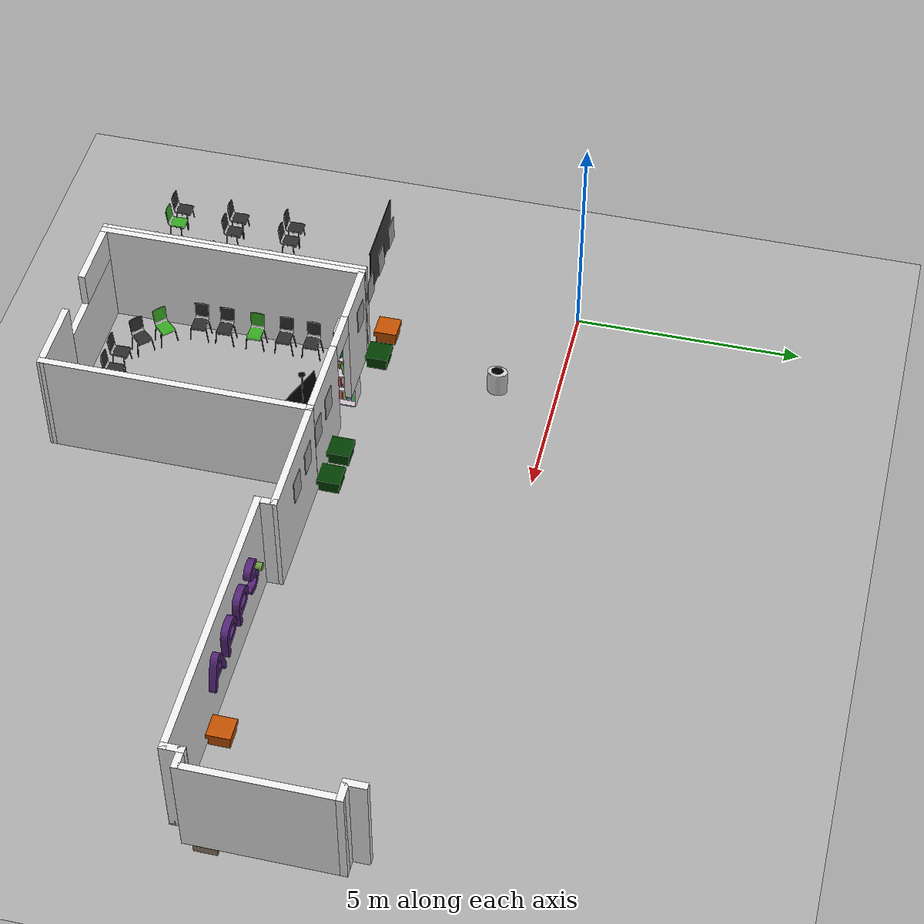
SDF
<sdf version="1.6">
 <world name="default">
  <model name="ground_plane">
   <static>1</static>
   <link name="link">
    <collision name="collision">
     <geometry><plane><normal>0 0 1</normal><size>100 100</size></plane></geometry>
     <surface><friction><ode><mu>100</mu><mu2>50</mu2></ode></friction></surface>
    </collision>
    <visual name="visual">
     <cast_shadows>0</cast_shadows>
     <geometry><plane><normal>0 0 1</normal><size>100 100</size></plane></geometry>
     <material>
      <script><uri>file://media/materials/scripts/gazebo.material</uri><name>Gazebo/Grey</name></script>
     </material>
    </visual>
   </link>
  </model>
  <model name="ucu_basic_frame.world">
   <link name="Wall_171">
    <pose>5.44548 -11.0107 0 0 -0 1.5685</pose>
    <visual name="Wall_171_Visual">
     <pose>0 0 1.25 0 -0 0</pose>
     <geometry><box><size>5.97284 0.15 2.5</size></box></geometry>
     <material>
      <script><uri>file://media/materials/scripts/gazebo.material</uri><name>Gazebo/White</name></script>
      <ambient>1 1 1 1</ambient>
      <diffuse>1 1 1 1</diffuse>
      <specular>0 0 0 1</specular>
      <emissive>0 0 0 1</emissive>
     </material>
     <meta><layer>0</layer></meta>
    </visual>
    <collision name="Wall_171_Collision">
     <pose>0 0 1.25 0 -0 0</pose>
     <geometry><box><size>5.97284 0.15 2.5</size></box></geometry>
     <surface>
      <friction>
       <ode><mu>1</mu><mu2>1</mu2><fdir1>0 0 0</fdir1><slip1>0</slip1><slip2>0</slip2></ode>
       <torsional>
        <coefficient>1</coefficient>
        <patch_radius>0</patch_radius>
        <surface_radius>0</surface_radius>
        <use_patch_radius>1</use_patch_radius>
        <ode><slip>0</slip></ode>
       </torsional>
      </friction>
      <bounce><restitution_coefficient>0</restitution_coefficient><threshold>1e+06</threshold></bounce>
      <contact>
       <collide_without_contact>0</collide_without_contact>
       <collide_without_contact_bitmask>1</collide_without_contact_bitmask>
       <collide_bitmask>1</collide_bitmask>
       <ode>
        <soft_cfm>0</soft_cfm>
        <soft_erp>0.2</soft_erp>
        <kp>1e+13</kp>
        <kd>1</kd>
        <max_vel>0.01</max_vel>
        <min_depth>0</min_depth>
       </ode>
       <bullet>
        <split_impulse>1</split_impulse>
        <split_impulse_penetration_threshold>-0.01</split_impulse_penetration_threshold>
        <soft_cfm>0</soft_cfm>
        <soft_erp>0.2</soft_erp>
        <kp>1e+13</kp>
        <kd>1</kd>
       </bullet>
      </contact>
     </surface>
    </collision>
   </link>
   <link name="Wall_172">
    <pose>6.76546 -8.09988 0 0 0 -0.000444</pose>
    <visual name="Wall_172_Visual">
     <pose>0 0 1.25 0 -0 0</pose>
     <geometry><box><size>2.77695 0.15 2.5</size></box></geometry>
     <material>
      <script><uri>file://media/materials/scripts/gazebo.material</uri><name>Gazebo/White</name></script>
      <ambient>1 1 1 1</ambient>
      <diffuse>1 1 1 1</diffuse>
      <specular>0 0 0 1</specular>
      <emissive>0 0 0 1</emissive>
     </material>
     <meta><layer>0</layer></meta>
    </visual>
    <collision name="Wall_172_Collision">
     <pose>0 0 1.25 0 -0 0</pose>
     <geometry><box><size>2.77695 0.15 2.5</size></box></geometry>
     <surface>
      <friction>
       <ode><mu>1</mu><mu2>1</mu2><fdir1>0 0 0</fdir1><slip1>0</slip1><slip2>0</slip2></ode>
       <torsional>
        <coefficient>1</coefficient>
        <patch_radius>0</patch_radius>
        <surface_radius>0</surface_radius>
        <use_patch_radius>1</use_patch_radius>
        <ode><slip>0</slip></ode>
       </torsional>
      </friction>
      <bounce><restitution_coefficient>0</restitution_coefficient><threshold>1e+06</threshold></bounce>
      <contact>
       <collide_without_contact>0</collide_without_contact>
       <collide_without_contact_bitmask>1</collide_without_contact_bitmask>
       <collide_bitmask>1</collide_bitmask>
       <ode>
        <soft_cfm>0</soft_cfm>
        <soft_erp>0.2</soft_erp>
        <kp>1e+13</kp>
        <kd>1</kd>
        <max_vel>0.01</max_vel>
        <min_depth>0</min_depth>
       </ode>
       <bullet>
        <split_impulse>1</split_impulse>
        <split_impulse_penetration_threshold>-0.01</split_impulse_penetration_threshold>
        <soft_cfm>0</soft_cfm>
        <soft_erp>0.2</soft_erp>
        <kp>1e+13</kp>
        <kd>1</kd>
       </bullet>
      </contact>
     </surface>
    </collision>
   </link>
   <link name="Wall_175">
    <pose>8.08184 -8.28385 0 0 0 -1.55318</pose>
    <visual name="Wall_175_Visual">
     <pose>0 0 1.25 0 -0 0</pose>
     <geometry><box><size>0.5 0.15 2.5</size></box></geometry>
     <material>
      <script><uri>file://media/materials/scripts/gazebo.material</uri><name>Gazebo/White</name></script>
      <ambient>1 1 1 1</ambient>
      <diffuse>1 1 1 1</diffuse>
      <specular>0 0 0 1</specular>
      <emissive>0 0 0 1</emissive>
     </material>
     <meta><layer>0</layer></meta>
    </visual>
    <collision name="Wall_175_Collision">
     <pose>0 0 1.25 0 -0 0</pose>
     <geometry><box><size>0.5 0.15 2.5</size></box></geometry>
     <surface>
      <friction>
       <ode><mu>1</mu><mu2>1</mu2><fdir1>0 0 0</fdir1><slip1>0</slip1><slip2>0</slip2></ode>
       <torsional>
        <coefficient>1</coefficient>
        <patch_radius>0</patch_radius>
        <surface_radius>0</surface_radius>
        <use_patch_radius>1</use_patch_radius>
        <ode><slip>0</slip></ode>
       </torsional>
      </friction>
      <bounce><restitution_coefficient>0</restitution_coefficient><threshold>1e+06</threshold></bounce>
      <contact>
       <collide_without_contact>0</collide_without_contact>
       <collide_without_contact_bitmask>1</collide_without_contact_bitmask>
       <collide_bitmask>1</collide_bitmask>
       <ode>
        <soft_cfm>0</soft_cfm>
        <soft_erp>0.2</soft_erp>
        <kp>1e+13</kp>
        <kd>1</kd>
        <max_vel>0.01</max_vel>
        <min_depth>0</min_depth>
       </ode>
       <bullet>
        <split_impulse>1</split_impulse>
        <split_impulse_penetration_threshold>-0.01</split_impulse_penetration_threshold>
        <soft_cfm>0</soft_cfm>
        <soft_erp>0.2</soft_erp>
        <kp>1e+13</kp>
        <kd>1</kd>
       </bullet>
      </contact>
     </surface>
    </collision>
   </link>
   <link name="Wall_181">
    <pose>3.39042 -8.08948 0 0 -0 3.13683</pose>
    <visual name="Wall_181_Visual_0">
     <pose>-1.19379 0 1.25 0 -0 0</pose>
     <geometry><box><size>1.8861 0.15 2.5</size></box></geometry>
     <material>
      <script><uri>file://media/materials/scripts/gazebo.material</uri><name>Gazebo/White</name></script>
      <ambient>1 1 1 1</ambient>
      <diffuse>1 1 1 1</diffuse>
      <specular>0 0 0 1</specular>
      <emissive>0 0 0 1</emissive>
     </material>
     <meta><layer>0</layer></meta>
    </visual>
    <visual name="Wall_181_Visual_1">
     <pose>1.39305 0 1.25 0 -0 0</pose>
     <geometry><box><size>1.48758 0.15 2.5</size></box></geometry>
     <material>
      <script><uri>file://media/materials/scripts/gazebo.material</uri><name>Gazebo/White</name></script>
      <ambient>1 1 1 1</ambient>
      <diffuse>1 1 1 1</diffuse>
      <specular>0 0 0 1</specular>
      <emissive>0 0 0 1</emissive>
     </material>
     <meta><layer>0</layer></meta>
    </visual>
    <visual name="Wall_181_Visual_2">
     <pose>0.19926 0 2.25 0 -0 0</pose>
     <geometry><box><size>0.9 0.15 0.5</size></box></geometry>
     <material>
      <script><uri>file://media/materials/scripts/gazebo.material</uri><name>Gazebo/White</name></script>
      <ambient>1 1 1 1</ambient>
      <diffuse>1 1 1 1</diffuse>
      <specular>0 0 0 1</specular>
      <emissive>0 0 0 1</emissive>
     </material>
     <meta><layer>0</layer></meta>
    </visual>
    <collision name="Wall_181_Collision_0">
     <pose>-1.19379 0 1.25 0 -0 0</pose>
     <geometry><box><size>1.8861 0.15 2.5</size></box></geometry>
     <surface>
      <friction>
       <ode><mu>1</mu><mu2>1</mu2><fdir1>0 0 0</fdir1><slip1>0</slip1><slip2>0</slip2></ode>
       <torsional>
        <coefficient>1</coefficient>
        <patch_radius>0</patch_radius>
        <surface_radius>0</surface_radius>
        <use_patch_radius>1</use_patch_radius>
        <ode><slip>0</slip></ode>
       </torsional>
      </friction>
      <bounce><restitution_coefficient>0</restitution_coefficient><threshold>1e+06</threshold></bounce>
      <contact>
       <collide_without_contact>0</collide_without_contact>
       <collide_without_contact_bitmask>1</collide_without_contact_bitmask>
       <collide_bitmask>1</collide_bitmask>
       <ode>
        <soft_cfm>0</soft_cfm>
        <soft_erp>0.2</soft_erp>
        <kp>1e+13</kp>
        <kd>1</kd>
        <max_vel>0.01</max_vel>
        <min_depth>0</min_depth>
       </ode>
       <bullet>
        <split_impulse>1</split_impulse>
        <split_impulse_penetration_threshold>-0.01</split_impulse_penetration_threshold>
        <soft_cfm>0</soft_cfm>
        <soft_erp>0.2</soft_erp>
        <kp>1e+13</kp>
        <kd>1</kd>
       </bullet>
      </contact>
     </surface>
    </collision>
    <collision name="Wall_181_Collision_1">
     <pose>1.39305 0 1.25 0 -0 0</pose>
     <geometry><box><size>1.48758 0.15 2.5</size></box></geometry>
     <surface>
      <friction>
       <ode><mu>1</mu><mu2>1</mu2><fdir1>0 0 0</fdir1><slip1>0</slip1><slip2>0</slip2></ode>
       <torsional>
        <coefficient>1</coefficient>
        <patch_radius>0</patch_radius>
        <surface_radius>0</surface_radius>
        <use_patch_radius>1</use_patch_radius>
        <ode><slip>0</slip></ode>
       </torsional>
      </friction>
      <bounce><restitution_coefficient>0</restitution_coefficient><threshold>1e+06</threshold></bounce>
      <contact>
       <collide_without_contact>0</collide_without_contact>
       <collide_without_contact_bitmask>1</collide_without_contact_bitmask>
       <collide_bitmask>1</collide_bitmask>
       <ode>
        <soft_cfm>0</soft_cfm>
        <soft_erp>0.2</soft_erp>
        <kp>1e+13</kp>
        <kd>1</kd>
        <max_vel>0.01</max_vel>
        <min_depth>0</min_depth>
       </ode>
       <bullet>
        <split_impulse>1</split_impulse>
        <split_impulse_penetration_threshold>-0.01</split_impulse_penetration_threshold>
        <soft_cfm>0</soft_cfm>
        <soft_erp>0.2</soft_erp>
        <kp>1e+13</kp>
        <kd>1</kd>
       </bullet>
      </contact>
     </surface>
    </collision>
    <collision name="Wall_181_Collision_2">
     <pose>0.19926 0 2.25 0 -0 0</pose>
     <geometry><box><size>0.9 0.15 0.5</size></box></geometry>
     <surface>
      <friction>
       <ode><mu>1</mu><mu2>1</mu2><fdir1>0 0 0</fdir1><slip1>0</slip1><slip2>0</slip2></ode>
       <torsional>
        <coefficient>1</coefficient>
        <patch_radius>0</patch_radius>
        <surface_radius>0</surface_radius>
        <use_patch_radius>1</use_patch_radius>
        <ode><slip>0</slip></ode>
       </torsional>
      </friction>
      <bounce><restitution_coefficient>0</restitution_coefficient><threshold>1e+06</threshold></bounce>
      <contact>
       <collide_without_contact>0</collide_without_contact>
       <collide_without_contact_bitmask>1</collide_without_contact_bitmask>
       <collide_bitmask>1</collide_bitmask>
       <ode>
        <soft_cfm>0</soft_cfm>
        <soft_erp>0.2</soft_erp>
        <kp>1e+13</kp>
        <kd>1</kd>
        <max_vel>0.01</max_vel>
        <min_depth>0</min_depth>
       </ode>
       <bullet>
        <split_impulse>1</split_impulse>
        <split_impulse_penetration_threshold>-0.01</split_impulse_penetration_threshold>
        <soft_cfm>0</soft_cfm>
        <soft_erp>0.2</soft_erp>
        <kp>1e+13</kp>
        <kd>1</kd>
       </bullet>
      </contact>
     </surface>
    </collision>
   </link>
   <link name="Wall_184">
    <pose>1.33252 -10.9956 0 0 0 -1.56948</pose>
    <visual name="Wall_184_Visual">
     <pose>0 0 1.25 0 -0 0</pose>
     <geometry><box><size>5.98199 0.15 2.5</size></box></geometry>
     <material>
      <script><uri>file://media/materials/scripts/gazebo.material</uri><name>Gazebo/White</name></script>
      <ambient>1 1 1 1</ambient>
      <diffuse>1 1 1 1</diffuse>
      <specular>0 0 0 1</specular>
      <emissive>0 0 0 1</emissive>
     </material>
     <meta><layer>0</layer></meta>
    </visual>
    <collision name="Wall_184_Collision">
     <pose>0 0 1.25 0 -0 0</pose>
     <geometry><box><size>5.98199 0.15 2.5</size></box></geometry>
     <surface>
      <friction>
       <ode><mu>1</mu><mu2>1</mu2><fdir1>0 0 0</fdir1><slip1>0</slip1><slip2>0</slip2></ode>
       <torsional>
        <coefficient>1</coefficient>
        <patch_radius>0</patch_radius>
        <surface_radius>0</surface_radius>
        <use_patch_radius>1</use_patch_radius>
        <ode><slip>0</slip></ode>
       </torsional>
      </friction>
      <bounce><restitution_coefficient>0</restitution_coefficient><threshold>1e+06</threshold></bounce>
      <contact>
       <collide_without_contact>0</collide_without_contact>
       <collide_without_contact_bitmask>1</collide_without_contact_bitmask>
       <collide_bitmask>1</collide_bitmask>
       <ode>
        <soft_cfm>0</soft_cfm>
        <soft_erp>0.2</soft_erp>
        <kp>1e+13</kp>
        <kd>1</kd>
        <max_vel>0.01</max_vel>
        <min_depth>0</min_depth>
       </ode>
       <bullet>
        <split_impulse>1</split_impulse>
        <split_impulse_penetration_threshold>-0.01</split_impulse_penetration_threshold>
        <soft_cfm>0</soft_cfm>
        <soft_erp>0.2</soft_erp>
        <kp>1e+13</kp>
        <kd>1</kd>
       </bullet>
      </contact>
     </surface>
    </collision>
   </link>
   <link name="Wall_185">
    <pose>1.28661 -13.9114 0 0 -0 3.13667</pose>
    <visual name="Wall_185_Visual">
     <pose>0 0 1.25 0 -0 0</pose>
     <geometry><box><size>0.249504 0.15 2.5</size></box></geometry>
     <material>
      <script><uri>file://media/materials/scripts/gazebo.material</uri><name>Gazebo/White</name></script>
      <ambient>1 1 1 1</ambient>
      <diffuse>1 1 1 1</diffuse>
      <specular>0 0 0 1</specular>
      <emissive>0 0 0 1</emissive>
     </material>
     <meta><layer>0</layer></meta>
    </visual>
    <collision name="Wall_185_Collision">
     <pose>0 0 1.25 0 -0 0</pose>
     <geometry><box><size>0.249504 0.15 2.5</size></box></geometry>
     <surface>
      <friction>
       <ode><mu>1</mu><mu2>1</mu2><fdir1>0 0 0</fdir1><slip1>0</slip1><slip2>0</slip2></ode>
       <torsional>
        <coefficient>1</coefficient>
        <patch_radius>0</patch_radius>
        <surface_radius>0</surface_radius>
        <use_patch_radius>1</use_patch_radius>
        <ode><slip>0</slip></ode>
       </torsional>
      </friction>
      <bounce><restitution_coefficient>0</restitution_coefficient><threshold>1e+06</threshold></bounce>
      <contact>
       <collide_without_contact>0</collide_without_contact>
       <collide_without_contact_bitmask>1</collide_without_contact_bitmask>
       <collide_bitmask>1</collide_bitmask>
       <ode>
        <soft_cfm>0</soft_cfm>
        <soft_erp>0.2</soft_erp>
        <kp>1e+13</kp>
        <kd>1</kd>
        <max_vel>0.01</max_vel>
        <min_depth>0</min_depth>
       </ode>
       <bullet>
        <split_impulse>1</split_impulse>
        <split_impulse_penetration_threshold>-0.01</split_impulse_penetration_threshold>
        <soft_cfm>0</soft_cfm>
        <soft_erp>0.2</soft_erp>
        <kp>1e+13</kp>
        <kd>1</kd>
       </bullet>
      </contact>
     </surface>
    </collision>
   </link>
   <link name="Wall_186">
    <pose>1.23028 -10.9951 0 0 -0 1.57305</pose>
    <visual name="Wall_186_Visual">
     <pose>0 0 1.25 0 -0 0</pose>
     <geometry><box><size>5.98236 0.15 2.5</size></box></geometry>
     <material>
      <script><uri>file://media/materials/scripts/gazebo.material</uri><name>Gazebo/White</name></script>
      <ambient>0 1 0 1</ambient>
      <diffuse>1 1 1 1</diffuse>
      <specular>0 0 0 1</specular>
      <emissive>0 0 0 1</emissive>
     </material>
     <meta><layer>0</layer></meta>
    </visual>
    <collision name="Wall_186_Collision">
     <pose>0 0 1.25 0 -0 0</pose>
     <geometry><box><size>5.98236 0.15 2.5</size></box></geometry>
     <surface>
      <friction>
       <ode><mu>1</mu><mu2>1</mu2><fdir1>0 0 0</fdir1><slip1>0</slip1><slip2>0</slip2></ode>
       <torsional>
        <coefficient>1</coefficient>
        <patch_radius>0</patch_radius>
        <surface_radius>0</surface_radius>
        <use_patch_radius>1</use_patch_radius>
        <ode><slip>0</slip></ode>
       </torsional>
      </friction>
      <bounce><restitution_coefficient>0</restitution_coefficient><threshold>1e+06</threshold></bounce>
      <contact>
       <collide_without_contact>0</collide_without_contact>
       <collide_without_contact_bitmask>1</collide_without_contact_bitmask>
       <collide_bitmask>1</collide_bitmask>
       <ode>
        <soft_cfm>0</soft_cfm>
        <soft_erp>0.2</soft_erp>
        <kp>1e+13</kp>
        <kd>1</kd>
        <max_vel>0.01</max_vel>
        <min_depth>0</min_depth>
       </ode>
       <bullet>
        <split_impulse>1</split_impulse>
        <split_impulse_penetration_threshold>-0.01</split_impulse_penetration_threshold>
        <soft_cfm>0</soft_cfm>
        <soft_erp>0.2</soft_erp>
        <kp>1e+13</kp>
        <kd>1</kd>
       </bullet>
      </contact>
     </surface>
    </collision>
   </link>
   <link name="Wall_191">
    <pose>3.38758 -13.9169 0 0 -0 3.13903</pose>
    <visual name="Wall_191_Visual_0">
     <pose>-1.31182 0 1.25 0 -0 0</pose>
     <geometry><box><size>1.62881 0.15 2.5</size></box></geometry>
     <material>
      <script><uri>file://media/materials/scripts/gazebo.material</uri><name>Gazebo/White</name></script>
      <ambient>1 1 1 1</ambient>
      <diffuse>1 1 1 1</diffuse>
      <specular>0 0 0 1</specular>
      <emissive>0 0 0 1</emissive>
     </material>
     <meta><layer>0</layer></meta>
    </visual>
    <visual name="Wall_191_Visual_1">
     <pose>0.814404 0 0.85 0 -0 0</pose>
     <geometry><box><size>2.62364 0.15 1.7</size></box></geometry>
     <material>
      <script><uri>file://media/materials/scripts/gazebo.material</uri><name>Gazebo/White</name></script>
      <ambient>1 1 1 1</ambient>
      <diffuse>1 1 1 1</diffuse>
      <specular>0 0 0 1</specular>
      <emissive>0 0 0 1</emissive>
     </material>
     <meta><layer>0</layer></meta>
    </visual>
    <visual name="Wall_191_Visual_2">
     <pose>1.3144 0 2.1 0 -0 0</pose>
     <geometry><box><size>1.62365 0.15 0.8</size></box></geometry>
     <material>
      <script><uri>file://media/materials/scripts/gazebo.material</uri><name>Gazebo/White</name></script>
      <ambient>1 1 1 1</ambient>
      <diffuse>1 1 1 1</diffuse>
      <specular>0 0 0 1</specular>
      <emissive>0 0 0 1</emissive>
     </material>
     <meta><layer>0</layer></meta>
    </visual>
    <collision name="Wall_191_Collision_1">
     <pose>0.814404 0 0.85 0 -0 0</pose>
     <geometry><box><size>2.62364 0.15 1.7</size></box></geometry>
     <surface>
      <friction>
       <ode><mu>1</mu><mu2>1</mu2><fdir1>0 0 0</fdir1><slip1>0</slip1><slip2>0</slip2></ode>
       <torsional>
        <coefficient>1</coefficient>
        <patch_radius>0</patch_radius>
        <surface_radius>0</surface_radius>
        <use_patch_radius>1</use_patch_radius>
        <ode><slip>0</slip></ode>
       </torsional>
      </friction>
      <bounce><restitution_coefficient>0</restitution_coefficient><threshold>1e+06</threshold></bounce>
      <contact>
       <collide_without_contact>0</collide_without_contact>
       <collide_without_contact_bitmask>1</collide_without_contact_bitmask>
       <collide_bitmask>1</collide_bitmask>
       <ode>
        <soft_cfm>0</soft_cfm>
        <soft_erp>0.2</soft_erp>
        <kp>1e+13</kp>
        <kd>1</kd>
        <max_vel>0.01</max_vel>
        <min_depth>0</min_depth>
       </ode>
       <bullet>
        <split_impulse>1</split_impulse>
        <split_impulse_penetration_threshold>-0.01</split_impulse_penetration_threshold>
        <soft_cfm>0</soft_cfm>
        <soft_erp>0.2</soft_erp>
        <kp>1e+13</kp>
        <kd>1</kd>
       </bullet>
      </contact>
     </surface>
    </collision>
    <collision name="Wall_191_Collision_0">
     <pose>-1.31182 0 1.25 0 -0 0</pose>
     <geometry><box><size>1.62881 0.15 2.5</size></box></geometry>
     <surface>
      <friction>
       <ode><mu>1</mu><mu2>1</mu2><fdir1>0 0 0</fdir1><slip1>0</slip1><slip2>0</slip2></ode>
       <torsional>
        <coefficient>1</coefficient>
        <patch_radius>0</patch_radius>
        <surface_radius>0</surface_radius>
        <use_patch_radius>1</use_patch_radius>
        <ode><slip>0</slip></ode>
       </torsional>
      </friction>
      <bounce><restitution_coefficient>0</restitution_coefficient><threshold>1e+06</threshold></bounce>
      <contact>
       <collide_without_contact>0</collide_without_contact>
       <collide_without_contact_bitmask>1</collide_without_contact_bitmask>
       <collide_bitmask>1</collide_bitmask>
       <ode>
        <soft_cfm>0</soft_cfm>
        <soft_erp>0.2</soft_erp>
        <kp>1e+13</kp>
        <kd>1</kd>
        <max_vel>0.01</max_vel>
        <min_depth>0</min_depth>
       </ode>
       <bullet>
        <split_impulse>1</split_impulse>
        <split_impulse_penetration_threshold>-0.01</split_impulse_penetration_threshold>
        <soft_cfm>0</soft_cfm>
        <soft_erp>0.2</soft_erp>
        <kp>1e+13</kp>
        <kd>1</kd>
       </bullet>
      </contact>
     </surface>
    </collision>
    <collision name="Wall_191_Collision_2">
     <pose>1.3144 0 2.1 0 -0 0</pose>
     <geometry><box><size>1.62365 0.15 0.8</size></box></geometry>
     <surface>
      <friction>
       <ode><mu>1</mu><mu2>1</mu2><fdir1>0 0 0</fdir1><slip1>0</slip1><slip2>0</slip2></ode>
       <torsional>
        <coefficient>1</coefficient>
        <patch_radius>0</patch_radius>
        <surface_radius>0</surface_radius>
        <use_patch_radius>1</use_patch_radius>
        <ode><slip>0</slip></ode>
       </torsional>
      </friction>
      <bounce><restitution_coefficient>0</restitution_coefficient><threshold>1e+06</threshold></bounce>
      <contact>
       <collide_without_contact>0</collide_without_contact>
       <collide_without_contact_bitmask>1</collide_without_contact_bitmask>
       <collide_bitmask>1</collide_bitmask>
       <ode>
        <soft_cfm>0</soft_cfm>
        <soft_erp>0.2</soft_erp>
        <kp>1e+13</kp>
        <kd>1</kd>
        <max_vel>0.01</max_vel>
        <min_depth>0</min_depth>
       </ode>
       <bullet>
        <split_impulse>1</split_impulse>
        <split_impulse_penetration_threshold>-0.01</split_impulse_penetration_threshold>
        <soft_cfm>0</soft_cfm>
        <soft_erp>0.2</soft_erp>
        <kp>1e+13</kp>
        <kd>1</kd>
       </bullet>
      </contact>
     </surface>
    </collision>
   </link>
   <link name="Wall_276">
    <pose>11.1349 -8.45041 0 0 -0 0</pose>
    <visual name="Wall_276_Visual">
     <pose>0 0 1.25 0 -0 0</pose>
     <geometry><box><size>6.25 0.15 2.5</size></box></geometry>
     <material>
      <script><uri>file://media/materials/scripts/gazebo.material</uri><name>Gazebo/White</name></script>
      <ambient>1 1 1 1</ambient>
      <diffuse>1 1 1 1</diffuse>
      <specular>0 0 0 1</specular>
      <emissive>0 0 0 1</emissive>
     </material>
     <meta><layer>0</layer></meta>
    </visual>
    <collision name="Wall_276_Collision">
     <pose>0 0 1.25 0 -0 0</pose>
     <geometry><box><size>6.25 0.15 2.5</size></box></geometry>
     <surface>
      <friction>
       <ode><mu>1</mu><mu2>1</mu2><fdir1>0 0 0</fdir1><slip1>0</slip1><slip2>0</slip2></ode>
       <torsional>
        <coefficient>1</coefficient>
        <patch_radius>0</patch_radius>
        <surface_radius>0</surface_radius>
        <use_patch_radius>1</use_patch_radius>
        <ode><slip>0</slip></ode>
       </torsional>
      </friction>
      <bounce><restitution_coefficient>0</restitution_coefficient><threshold>1e+06</threshold></bounce>
      <contact>
       <collide_without_contact>0</collide_without_contact>
       <collide_without_contact_bitmask>1</collide_without_contact_bitmask>
       <collide_bitmask>1</collide_bitmask>
       <ode>
        <soft_cfm>0</soft_cfm>
        <soft_erp>0.2</soft_erp>
        <kp>1e+13</kp>
        <kd>1</kd>
        <max_vel>0.01</max_vel>
        <min_depth>0</min_depth>
       </ode>
       <bullet>
        <split_impulse>1</split_impulse>
        <split_impulse_penetration_threshold>-0.01</split_impulse_penetration_threshold>
        <soft_cfm>0</soft_cfm>
        <soft_erp>0.2</soft_erp>
        <kp>1e+13</kp>
        <kd>1</kd>
       </bullet>
      </contact>
     </surface>
    </collision>
   </link>
   <link name="Wall_293">
    <pose>14.1849 -8.27541 0 0 -0 1.5708</pose>
    <visual name="Wall_293_Visual">
     <pose>0 0 1.25 0 -0 0</pose>
     <geometry><box><size>0.5 0.15 2.5</size></box></geometry>
     <material>
      <script><uri>file://media/materials/scripts/gazebo.material</uri><name>Gazebo/White</name></script>
      <ambient>1 1 1 1</ambient>
      <diffuse>1 1 1 1</diffuse>
      <specular>0 0 0 1</specular>
      <emissive>0 0 0 1</emissive>
     </material>
     <meta><layer>0</layer></meta>
    </visual>
    <collision name="Wall_293_Collision">
     <pose>0 0 1.25 0 -0 0</pose>
     <geometry><box><size>0.5 0.15 2.5</size></box></geometry>
     <surface>
      <friction>
       <ode><mu>1</mu><mu2>1</mu2><fdir1>0 0 0</fdir1><slip1>0</slip1><slip2>0</slip2></ode>
       <torsional>
        <coefficient>1</coefficient>
        <patch_radius>0</patch_radius>
        <surface_radius>0</surface_radius>
        <use_patch_radius>1</use_patch_radius>
        <ode><slip>0</slip></ode>
       </torsional>
      </friction>
      <bounce><restitution_coefficient>0</restitution_coefficient><threshold>1e+06</threshold></bounce>
      <contact>
       <collide_without_contact>0</collide_without_contact>
       <collide_without_contact_bitmask>1</collide_without_contact_bitmask>
       <collide_bitmask>1</collide_bitmask>
       <ode>
        <soft_cfm>0</soft_cfm>
        <soft_erp>0.2</soft_erp>
        <kp>1e+13</kp>
        <kd>1</kd>
        <max_vel>0.01</max_vel>
        <min_depth>0</min_depth>
       </ode>
       <bullet>
        <split_impulse>1</split_impulse>
        <split_impulse_penetration_threshold>-0.01</split_impulse_penetration_threshold>
        <soft_cfm>0</soft_cfm>
        <soft_erp>0.2</soft_erp>
        <kp>1e+13</kp>
        <kd>1</kd>
       </bullet>
      </contact>
     </surface>
    </collision>
   </link>
   <link name="Wall_294">
    <pose>14.3599 -8.10041 0 0 -0 0</pose>
    <visual name="Wall_294_Visual">
     <pose>0 0 1.25 0 -0 0</pose>
     <geometry><box><size>0.5 0.15 2.5</size></box></geometry>
     <material>
      <script><uri>file://media/materials/scripts/gazebo.material</uri><name>Gazebo/White</name></script>
      <ambient>1 1 1 1</ambient>
      <diffuse>1 1 1 1</diffuse>
      <specular>0 0 0 1</specular>
      <emissive>0 0 0 1</emissive>
     </material>
     <meta><layer>0</layer></meta>
    </visual>
    <collision name="Wall_294_Collision">
     <pose>0 0 1.25 0 -0 0</pose>
     <geometry><box><size>0.5 0.15 2.5</size></box></geometry>
     <surface>
      <friction>
       <ode><mu>1</mu><mu2>1</mu2><fdir1>0 0 0</fdir1><slip1>0</slip1><slip2>0</slip2></ode>
       <torsional>
        <coefficient>1</coefficient>
        <patch_radius>0</patch_radius>
        <surface_radius>0</surface_radius>
        <use_patch_radius>1</use_patch_radius>
        <ode><slip>0</slip></ode>
       </torsional>
      </friction>
      <bounce><restitution_coefficient>0</restitution_coefficient><threshold>1e+06</threshold></bounce>
      <contact>
       <collide_without_contact>0</collide_without_contact>
       <collide_without_contact_bitmask>1</collide_without_contact_bitmask>
       <collide_bitmask>1</collide_bitmask>
       <ode>
        <soft_cfm>0</soft_cfm>
        <soft_erp>0.2</soft_erp>
        <kp>1e+13</kp>
        <kd>1</kd>
        <max_vel>0.01</max_vel>
        <min_depth>0</min_depth>
       </ode>
       <bullet>
        <split_impulse>1</split_impulse>
        <split_impulse_penetration_threshold>-0.01</split_impulse_penetration_threshold>
        <soft_cfm>0</soft_cfm>
        <soft_erp>0.2</soft_erp>
        <kp>1e+13</kp>
        <kd>1</kd>
       </bullet>
      </contact>
     </surface>
    </collision>
   </link>
   <link name="Wall_296">
    <pose>14.5349 -6.55041 0 0 -0 1.5708</pose>
    <visual name="Wall_296_Visual">
     <pose>0 0 1.25 0 -0 0</pose>
     <geometry><box><size>3.25 0.15 2.5</size></box></geometry>
     <material>
      <script><uri>file://media/materials/scripts/gazebo.material</uri><name>Gazebo/White</name></script>
      <ambient>1 1 1 1</ambient>
      <diffuse>1 1 1 1</diffuse>
      <specular>0 0 0 1</specular>
      <emissive>0 0 0 1</emissive>
     </material>
     <meta><layer>0</layer></meta>
    </visual>
    <collision name="Wall_296_Collision">
     <pose>0 0 1.25 0 -0 0</pose>
     <geometry><box><size>3.25 0.15 2.5</size></box></geometry>
     <surface>
      <friction>
       <ode><mu>1</mu><mu2>1</mu2><fdir1>0 0 0</fdir1><slip1>0</slip1><slip2>0</slip2></ode>
       <torsional>
        <coefficient>1</coefficient>
        <patch_radius>0</patch_radius>
        <surface_radius>0</surface_radius>
        <use_patch_radius>1</use_patch_radius>
        <ode><slip>0</slip></ode>
       </torsional>
      </friction>
      <bounce><restitution_coefficient>0</restitution_coefficient><threshold>1e+06</threshold></bounce>
      <contact>
       <collide_without_contact>0</collide_without_contact>
       <collide_without_contact_bitmask>1</collide_without_contact_bitmask>
       <collide_bitmask>1</collide_bitmask>
       <ode>
        <soft_cfm>0</soft_cfm>
        <soft_erp>0.2</soft_erp>
        <kp>1e+13</kp>
        <kd>1</kd>
        <max_vel>0.01</max_vel>
        <min_depth>0</min_depth>
       </ode>
       <bullet>
        <split_impulse>1</split_impulse>
        <split_impulse_penetration_threshold>-0.01</split_impulse_penetration_threshold>
        <soft_cfm>0</soft_cfm>
        <soft_erp>0.2</soft_erp>
        <kp>1e+13</kp>
        <kd>1</kd>
       </bullet>
      </contact>
     </surface>
    </collision>
   </link>
   <link name="Wall_297">
    <pose>14.3599 -5.00041 0 0 -0 3.14159</pose>
    <visual name="Wall_297_Visual">
     <pose>0 0 1.25 0 -0 0</pose>
     <geometry><box><size>0.5 0.15 2.5</size></box></geometry>
     <material>
      <script><uri>file://media/materials/scripts/gazebo.material</uri><name>Gazebo/White</name></script>
      <ambient>1 1 1 1</ambient>
      <diffuse>1 1 1 1</diffuse>
      <specular>0 0 0 1</specular>
      <emissive>0 0 0 1</emissive>
     </material>
     <meta><layer>0</layer></meta>
    </visual>
    <collision name="Wall_297_Collision">
     <pose>0 0 1.25 0 -0 0</pose>
     <geometry><box><size>0.5 0.15 2.5</size></box></geometry>
     <surface>
      <friction>
       <ode><mu>1</mu><mu2>1</mu2><fdir1>0 0 0</fdir1><slip1>0</slip1><slip2>0</slip2></ode>
       <torsional>
        <coefficient>1</coefficient>
        <patch_radius>0</patch_radius>
        <surface_radius>0</surface_radius>
        <use_patch_radius>1</use_patch_radius>
        <ode><slip>0</slip></ode>
       </torsional>
      </friction>
      <bounce><restitution_coefficient>0</restitution_coefficient><threshold>1e+06</threshold></bounce>
      <contact>
       <collide_without_contact>0</collide_without_contact>
       <collide_without_contact_bitmask>1</collide_without_contact_bitmask>
       <collide_bitmask>1</collide_bitmask>
       <ode>
        <soft_cfm>0</soft_cfm>
        <soft_erp>0.2</soft_erp>
        <kp>1e+13</kp>
        <kd>1</kd>
        <max_vel>0.01</max_vel>
        <min_depth>0</min_depth>
       </ode>
       <bullet>
        <split_impulse>1</split_impulse>
        <split_impulse_penetration_threshold>-0.01</split_impulse_penetration_threshold>
        <soft_cfm>0</soft_cfm>
        <soft_erp>0.2</soft_erp>
        <kp>1e+13</kp>
        <kd>1</kd>
       </bullet>
      </contact>
     </surface>
    </collision>
   </link>
   <link name="Wall_298">
    <pose>14.1849 -4.82541 0 0 -0 1.5708</pose>
    <visual name="Wall_298_Visual">
     <pose>0 0 1.25 0 -0 0</pose>
     <geometry><box><size>0.5 0.15 2.5</size></box></geometry>
     <material>
      <script><uri>file://media/materials/scripts/gazebo.material</uri><name>Gazebo/White</name></script>
      <ambient>1 1 1 1</ambient>
      <diffuse>1 1 1 1</diffuse>
      <specular>0 0 0 1</specular>
      <emissive>0 0 0 1</emissive>
     </material>
     <meta><layer>0</layer></meta>
    </visual>
    <collision name="Wall_298_Collision">
     <pose>0 0 1.25 0 -0 0</pose>
     <geometry><box><size>0.5 0.15 2.5</size></box></geometry>
     <surface>
      <friction>
       <ode><mu>1</mu><mu2>1</mu2><fdir1>0 0 0</fdir1><slip1>0</slip1><slip2>0</slip2></ode>
       <torsional>
        <coefficient>1</coefficient>
        <patch_radius>0</patch_radius>
        <surface_radius>0</surface_radius>
        <use_patch_radius>1</use_patch_radius>
        <ode><slip>0</slip></ode>
       </torsional>
      </friction>
      <bounce><restitution_coefficient>0</restitution_coefficient><threshold>1e+06</threshold></bounce>
      <contact>
       <collide_without_contact>0</collide_without_contact>
       <collide_without_contact_bitmask>1</collide_without_contact_bitmask>
       <collide_bitmask>1</collide_bitmask>
       <ode>
        <soft_cfm>0</soft_cfm>
        <soft_erp>0.2</soft_erp>
        <kp>1e+13</kp>
        <kd>1</kd>
        <max_vel>0.01</max_vel>
        <min_depth>0</min_depth>
       </ode>
       <bullet>
        <split_impulse>1</split_impulse>
        <split_impulse_penetration_threshold>-0.01</split_impulse_penetration_threshold>
        <soft_cfm>0</soft_cfm>
        <soft_erp>0.2</soft_erp>
        <kp>1e+13</kp>
        <kd>1</kd>
       </bullet>
      </contact>
     </surface>
    </collision>
   </link>
   <static>1</static>
   <pose>0.7577 3.6363 0 0 -0 0</pose>
  </model>
  <include>
   <uri>model://robert_gazebo/models/APPS_letters</uri>
   <name>APPS</name>
   <pose>11.01 -4.67 1.49 0 0 1.57</pose>
  </include>
  <include>
   <uri>model://robert_gazebo/models/locker_008</uri>
   <name>locker_008</name>
   <pose>1.87 -5.11 0.45 0 0 -1.57</pose>
  </include>
  <include>
   <uri>model://robert_gazebo/models/pictures/p1_myroslav_popovych</uri>
   <name>p1_myroslav_popovych</name>
   <pose>7.69 -4.35 1.72 0 0 -0.02</pose>
  </include>
  <include>
   <uri>model://robert_gazebo/models/pictures/p2_oprah_winfrey</uri>
   <name>p2_oprah_winfrey</name>
   <pose>6.89 -4.35 1.72 0 0 0</pose>
  </include>
  <include>
   <uri>model://robert_gazebo/models/pictures/p3_lubomyr_romankiw</uri>
   <name>p3_lubomyr_romankiw</name>
   <pose>6.09 -4.35 1.72 0 0 -0.02</pose>
  </include>
  <include>
   <uri>model://robert_gazebo/models/pictures/p4_viktor_morozov</uri>
   <name>p4_viktor_morozov</name>
   <pose>5.29 -4.35 1.72 0 0 -0.02</pose>
  </include>
  <include>
   <uri>model://robert_gazebo/models/pictures/p5_mahatma_gandhi</uri>
   <name>p5_mahatma_gandhi</name>
   <pose>2.65 -4.35 1.72 0 0 -0.02</pose>
  </include>
  <include>
   <uri>model://robert_gazebo/models/pictures/p6_lina_kostenko</uri>
   <name>p6_lina_kostenko</name>
   <pose>1.75 -4.35 1.72 0 0 -0.02</pose>
  </include>
  <include>
   <uri>model://robert_gazebo/models/pictures/p7_henry_ford</uri>
   <name>p7_henry_ford</name>
   <pose>0.85 -4.35 1.72 0 0 -0.02</pose>
  </include>
  <include>
   <uri>model://robert_gazebo/models/pictures/p8_gregory_skovoroda</uri>
   <name>p8_gregory_skovoroda</name>
   <pose>-0.04 -4.35 1.72 0 0 -0.02</pose>
  </include>
  <include>
   <uri>model://robert_gazebo/models/dump</uri>
   <name>dump_1</name>
   <pose>2.52 -1.32 0.28 0 0 -1.57</pose>
  </include>
  <include>
   <uri>model://robert_gazebo/models/screen</uri>
   <name>screen_007</name>
   <pose>5.31 -4.95 1.6 0 0 2.79</pose>
  </include>
  <include>
   <uri>model://robert_gazebo/models/classroom_chair_green</uri>
   <name>classroom_chair_008_1_1_1</name>
   <pose>0.81 -6.94 0.445 0 0 3.14</pose>
  </include>
  <include>
   <uri>model://robert_gazebo/models/classroom_chair_grey</uri>
   <name>classroom_chair_008_1_1_2</name>
   <pose>0.35 -6.94 0.445 0 0 3.14</pose>
  </include>
  <include>
   <uri>model://robert_gazebo/models/classroom_chair_grey</uri>
   <name>classroom_chair_008_1_2_1</name>
   <pose>-0.61 -6.94 0.445 0 0 3.14</pose>
  </include>
  <include>
   <uri>model://robert_gazebo/models/classroom_chair_grey</uri>
   <name>classroom_chair_008_1_2_2</name>
   <pose>-1.07 -6.94 0.445 0 0 3.14</pose>
  </include>
  <include>
   <uri>model://robert_gazebo/models/classroom_chair_grey</uri>
   <name>classroom_chair_008_2_1_1</name>
   <pose>0.81 -8.29 0.445 0 0 3.14</pose>
  </include>
  <include>
   <uri>model://robert_gazebo/models/classroom_chair_grey</uri>
   <name>classroom_chair_008_2_1_2</name>
   <pose>0.35 -8.29 0.445 0 0 3.14</pose>
  </include>
  <include>
   <uri>model://robert_gazebo/models/classroom_chair_grey</uri>
   <name>classroom_chair_008_2_2_1</name>
   <pose>-0.61 -8.29 0.445 0 0 3.14</pose>
  </include>
  <include>
   <uri>model://robert_gazebo/models/classroom_chair_grey</uri>
   <name>classroom_chair_008_2_2_2</name>
   <pose>-1.07 -8.29 0.445 0 0 3.14</pose>
  </include>
  <include>
   <uri>model://robert_gazebo/models/classroom_chair_grey</uri>
   <name>classroom_chair_008_3_1_1</name>
   <pose>0.81 -9.64 0.445 0 0 3.14</pose>
  </include>
  <include>
   <uri>model://robert_gazebo/models/classroom_chair_grey</uri>
   <name>classroom_chair_008_3_1_2</name>
   <pose>0.35 -9.64 0.445 0 0 3.14</pose>
  </include>
  <include>
   <uri>model://robert_gazebo/models/classroom_chair_green</uri>
   <name>classroom_chair_008_3_2_1</name>
   <pose>-0.61 -9.64 0.445 0 0 3.14</pose>
  </include>
  <include>
   <uri>model://robert_gazebo/models/classroom_chair_grey</uri>
   <name>classroom_chair_008_3_2_2</name>
   <pose>-1.07 -9.64 0.445 0 0 3.14</pose>
  </include>
  <include>
   <uri>model://robert_gazebo/models/classroom_chair_grey</uri>
   <name>classroom_chair_007_2</name>
   <pose>4.21922 -9.58492 0.445359 1.2e-05 0.00014 3.13988</pose>
  </include>
  <include>
   <uri>model://robert_gazebo/models/classroom_chair_grey</uri>
   <name>classroom_chair_007_3</name>
   <pose>3.68603 -9.60896 0.445359 1.2e-05 0.00014 3.13988</pose>
  </include>
  <include>
   <uri>model://robert_gazebo/models/classroom_chair_grey</uri>
   <name>classroom_chair_007_4</name>
   <pose>3.14472 -9.29359 0.445386 -8.6e-05 0.000111 2.39401</pose>
  </include>
  <include>
   <uri>model://robert_gazebo/models/classroom_chair_green</uri>
   <name>classroom_chair_007_5</name>
   <pose>2.73532 -8.88305 0.445386 -8.6e-05 0.000111 2.39401</pose>
  </include>
  <include>
   <uri>model://robert_gazebo/models/classroom_chair_grey</uri>
   <name>classroom_chair_007_6</name>
   <pose>2.43068 -8.14518 0.445194 -0.00014 1.3e-05 1.57295</pose>
  </include>
  <include>
   <uri>model://robert_gazebo/models/classroom_chair_grey</uri>
   <name>classroom_chair_007_7</name>
   <pose>2.43592 -7.55694 0.445197 -0.00014 1.3e-05 1.57295</pose>
  </include>
  <include>
   <uri>model://robert_gazebo/models/classroom_chair_green</uri>
   <name>classroom_chair_007_8</name>
   <pose>2.43449 -6.85124 0.445198 -0.00014 1.3e-05 1.57295</pose>
  </include>
  <include>
   <uri>model://robert_gazebo/models/classroom_chair_grey</uri>
   <name>classroom_chair_007_9</name>
   <pose>2.41251 -6.18546 0.44519 -0.00014 1.3e-05 1.57295</pose>
  </include>
  <include>
   <uri>model://robert_gazebo/models/classroom_chair_grey</uri>
   <name>classroom_chair_007_10</name>
   <pose>2.42566 -5.55567 0.445198 -0.00014 1.3e-05 1.57295</pose>
  </include>
  <include>
   <uri>model://robert_gazebo/models/soft_armchair/green</uri>
   <name>soft_armchair_green_4</name>
   <pose>6.2 -4.09 0.38 0 0 0</pose>
  </include>
  <include>
   <uri>model://robert_gazebo/models/soft_armchair/green</uri>
   <name>soft_armchair_green_5</name>
   <pose>5.4 -4.09 0.38 0 0 0</pose>
  </include>
  <include>
   <uri>model://robert_gazebo/models/soft_armchair/green</uri>
   <name>soft_armchair_green_6</name>
   <pose>2.47 -4.01 0.38 0 0 0</pose>
  </include>
  <include>
   <uri>model://robert_gazebo/models/soft_armchair/orange</uri>
   <name>soft_armchair_orange_2</name>
   <pose>14.88 -2.56 0.38 0 0 1.57</pose>
  </include>
  <include>
   <uri>model://robert_gazebo/models/soft_armchair/orange</uri>
   <name>soft_armchair_orange_3</name>
   <pose>12.99 -4.43 0.38 0 0 0</pose>
  </include>
  <include>
   <uri>model://robert_gazebo/models/soft_armchair/orange</uri>
   <name>soft_armchair_orange_4</name>
   <pose>5.71 -9.93 0.38 0 0 0</pose>
  </include>
  <include>
   <uri>model://robert_gazebo/models/soft_armchair/orange</uri>
   <name>soft_armchair_orange_5</name>
   <pose>1.67 -4.01 0.38 0 0 0</pose>
  </include>
  <include>
   <uri>model://robert_gazebo/models/fire_rescue</uri>
   <name>fire_rescue_box</name>
   <pose>15 -4.14 0 0 0 3.14</pose>
  </include>
  <include>
   <uri>model://robert_gazebo/models/bookcase</uri>
   <name>bookcase_007</name>
   <pose>2.41 -4.8 0 0 0 -1.57</pose>
  </include>
  <include>
   <uri>model://robert_gazebo/models/board_wall</uri>
   <name>board_007</name>
   <pose>6.1 -7.44 1.46 0 0 3.14</pose>
  </include>
  <include>
   <uri>model://robert_gazebo/models/board_008</uri>
   <name>board_008_2</name>
   <pose>0.178197 -4.53903 1.46 0 0 -1.57</pose>
  </include>
  <include>
   <uri>model://robert_gazebo/models/qr/007</uri>
   <name>qr_007</name>
   <pose>3.17 -4.53 1.6 0 0 0</pose>
  </include>
 </world>
</sdf>
